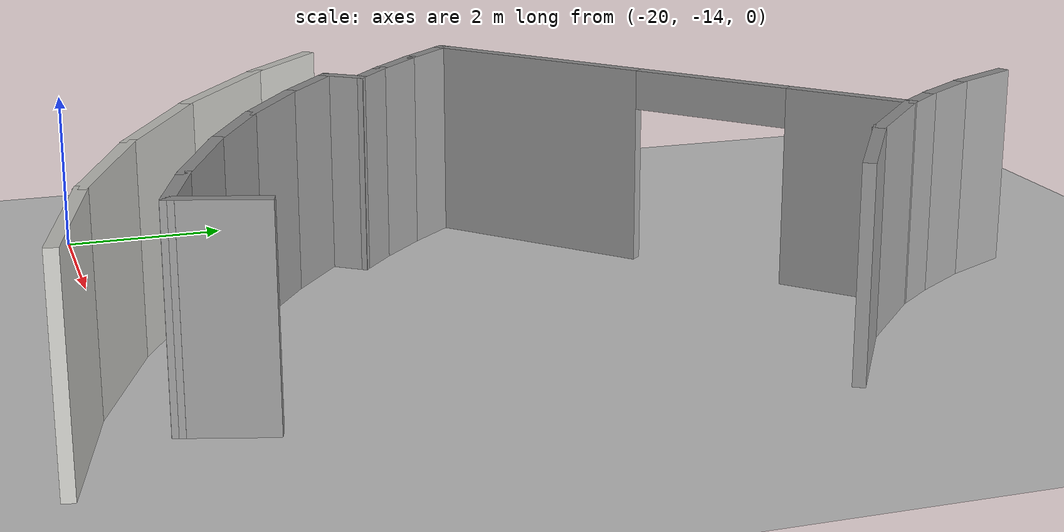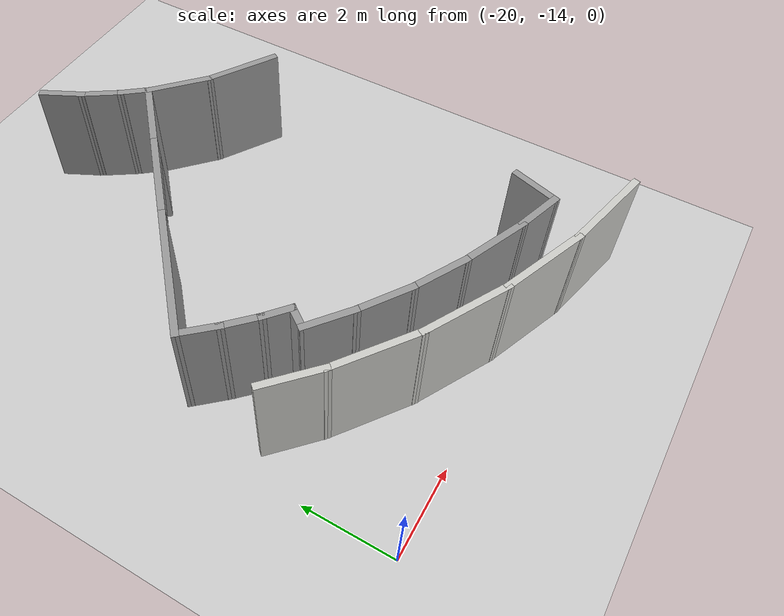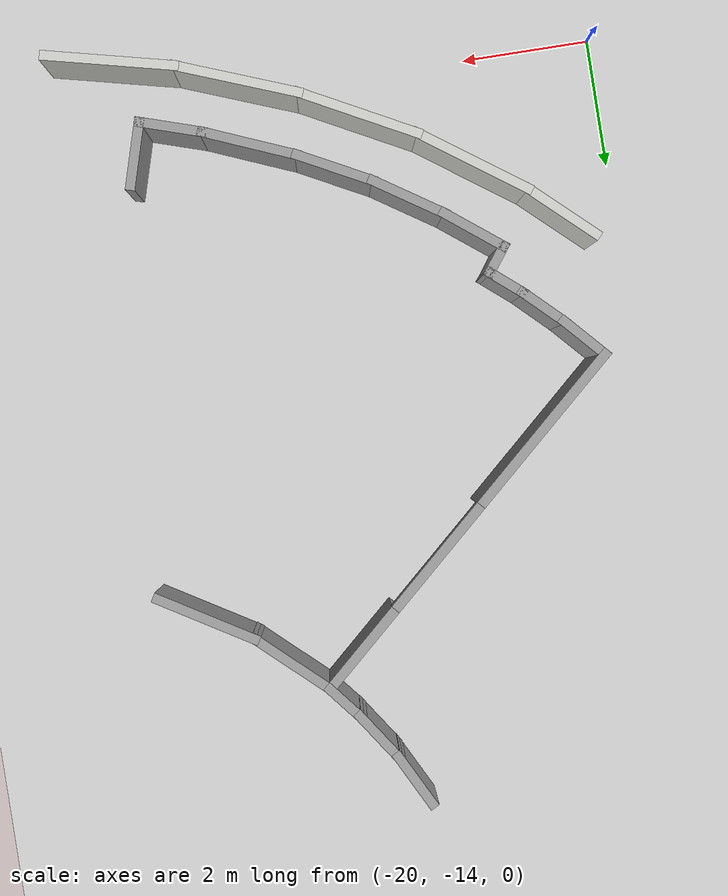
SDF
<sdf version="1.7">
 <world name="default">
  <model name="ground_plane">
   <static>1</static>
   <link name="link">
    <collision name="collision">
     <geometry><plane><normal>0 0 1</normal><size>100 100</size></plane></geometry>
     <surface>
      <contact><collide_bitmask>65535</collide_bitmask></contact>
      <friction><ode><mu>100</mu><mu2>50</mu2></ode></friction>
     </surface>
    </collision>
    <visual name="visual">
     <cast_shadows>0</cast_shadows>
     <geometry><plane><normal>0 0 1</normal><size>100 100</size></plane></geometry>
     <material>
      <script><uri>file://media/materials/scripts/gazebo.material</uri><name>Gazebo/Grey</name></script>
     </material>
    </visual>
   </link>
  </model>
  <model name="model">
   <pose>-4.1341 -0.05921 0 0 -0 0</pose>
   <link name="Wall_145">
    <collision name="Wall_145_Collision">
     <geometry><box><size>1.02535 0.15 2.5</size></box></geometry>
     <pose>0 0 1.25 0 -0 0</pose>
    </collision>
    <visual name="Wall_145_Visual">
     <pose>0 0 1.25 0 -0 0</pose>
     <geometry><box><size>1.02535 0.15 2.5</size></box></geometry>
     <material>
      <script><uri>file://media/materials/scripts/gazebo.material</uri><name>Gazebo/Grey</name></script>
      <ambient>0.929412 0.960784 0.933333 1</ambient>
     </material>
     <meta><layer>0</layer></meta>
    </visual>
    <pose>-11.2782 -3.01729 0 0 -0 -1.10039</pose>
   </link>
   <link name="Wall_146">
    <collision name="Wall_146_Collision">
     <geometry><box><size>0.997329 0.15 2.5</size></box></geometry>
     <pose>0 0 1.25 0 -0 0</pose>
    </collision>
    <visual name="Wall_146_Visual">
     <pose>0 0 1.25 0 -0 0</pose>
     <geometry><box><size>0.997329 0.15 2.5</size></box></geometry>
     <material>
      <script><uri>file://media/materials/scripts/gazebo.material</uri><name>Gazebo/Grey</name></script>
      <ambient>0.929412 0.960784 0.933333 1</ambient>
     </material>
     <meta><layer>0</layer></meta>
    </visual>
    <pose>-10.8418 -3.75789 0 0 -0 -0.974136</pose>
   </link>
   <link name="Wall_147">
    <collision name="Wall_147_Collision">
     <geometry><box><size>0.761361 0.15 2.5</size></box></geometry>
     <pose>0 0 1.25 0 -0 0</pose>
    </collision>
    <visual name="Wall_147_Visual">
     <pose>0 0 1.25 0 -0 0</pose>
     <geometry><box><size>0.761361 0.15 2.5</size></box></geometry>
     <material>
      <script><uri>file://media/materials/scripts/gazebo.material</uri><name>Gazebo/Grey</name></script>
      <ambient>0.929412 0.960784 0.933333 1</ambient>
     </material>
     <meta><layer>0</layer></meta>
    </visual>
    <pose>-10.4119 -4.3464 0 0 -0 -0.892677</pose>
   </link>
   <link name="Wall_149">
    <pose>-12.6849 -6.76582 0 0 -0 -2.4171</pose>
    <visual name="Wall_149_Visual_0">
     <pose>-2.54709 0 1.25 0 -0 0</pose>
     <geometry><box><size>1.63856 0.15 2.5</size></box></geometry>
     <material>
      <script><uri>file://media/materials/scripts/gazebo.material</uri><name>Gazebo/Grey</name></script>
      <ambient>0.929412 0.960784 0.933333 1</ambient>
     </material>
     <meta><layer>0</layer></meta>
    </visual>
    <collision name="Wall_149_Collision_0">
     <geometry><box><size>1.63856 0.15 2.5</size></box></geometry>
     <pose>-2.54709 0 1.25 0 -0 0</pose>
    </collision>
    <visual name="Wall_149_Visual_1">
     <pose>1.84361 0 1.25 0 -0 0</pose>
     <geometry><box><size>3.04552 0.15 2.5</size></box></geometry>
     <material>
      <script><uri>file://media/materials/scripts/gazebo.material</uri><name>Gazebo/Grey</name></script>
      <ambient>0.929412 0.960784 0.933333 1</ambient>
     </material>
     <meta><layer>0</layer></meta>
    </visual>
    <collision name="Wall_149_Collision_1">
     <geometry><box><size>3.04552 0.15 2.5</size></box></geometry>
     <pose>1.84361 0 1.25 0 -0 0</pose>
    </collision>
    <visual name="Wall_149_Visual_2">
     <pose>-0.703479 0 2.25 0 -0 0</pose>
     <geometry><box><size>2.04867 0.15 0.5</size></box></geometry>
     <material>
      <script><uri>file://media/materials/scripts/gazebo.material</uri><name>Gazebo/Grey</name></script>
      <ambient>0.929412 0.960784 0.933333 1</ambient>
     </material>
     <meta><layer>0</layer></meta>
    </visual>
    <collision name="Wall_149_Collision_2">
     <geometry><box><size>2.04867 0.15 0.5</size></box></geometry>
     <pose>-0.703479 0 2.25 0 -0 0</pose>
    </collision>
   </link>
   <link name="Wall_153">
    <collision name="Wall_153_Collision">
     <geometry><box><size>0.953287 0.15 2.5</size></box></geometry>
     <pose>0 0 1.25 0 -0 0</pose>
    </collision>
    <visual name="Wall_153_Visual">
     <pose>0 0 1.25 0 -0 0</pose>
     <geometry><box><size>0.953287 0.15 2.5</size></box></geometry>
     <material>
      <script><uri>file://media/materials/scripts/gazebo.material</uri><name>Gazebo/Grey</name></script>
      <ambient>1 1 1 1</ambient>
     </material>
     <meta><layer>0</layer></meta>
    </visual>
    <pose>-14.8797 -9.24465 0 0 -0 -0.833951</pose>
   </link>
   <link name="Wall_154">
    <collision name="Wall_154_Collision">
     <geometry><box><size>0.912545 0.15 2.5</size></box></geometry>
     <pose>0 0 1.25 0 -0 0</pose>
    </collision>
    <visual name="Wall_154_Visual">
     <pose>0 0 1.25 0 -0 0</pose>
     <geometry><box><size>0.912545 0.15 2.5</size></box></geometry>
     <material>
      <script><uri>file://media/materials/scripts/gazebo.material</uri><name>Gazebo/Grey</name></script>
      <ambient>1 1 1 1</ambient>
     </material>
     <meta><layer>0</layer></meta>
    </visual>
    <pose>-14.3359 -9.80732 0 0 -0 -0.769271</pose>
   </link>
   <link name="Wall_155">
    <collision name="Wall_155_Collision">
     <geometry><box><size>0.730072 0.15 2.5</size></box></geometry>
     <pose>0 0 1.25 0 -0 0</pose>
    </collision>
    <visual name="Wall_155_Visual">
     <pose>0 0 1.25 0 -0 0</pose>
     <geometry><box><size>0.730072 0.15 2.5</size></box></geometry>
     <material>
      <script><uri>file://media/materials/scripts/gazebo.material</uri><name>Gazebo/Grey</name></script>
      <ambient>1 1 1 1</ambient>
     </material>
     <meta><layer>0</layer></meta>
    </visual>
    <pose>-13.8402 -10.2595 0 0 -0 -0.700496</pose>
   </link>
   <link name="Wall_156">
    <collision name="Wall_156_Collision">
     <geometry><box><size>0.603926 0.15 2.5</size></box></geometry>
     <pose>0 0 1.25 0 -0 0</pose>
    </collision>
    <visual name="Wall_156_Visual">
     <pose>0 0 1.25 0 -0 0</pose>
     <geometry><box><size>0.603926 0.15 2.5</size></box></geometry>
     <material>
      <script><uri>file://media/materials/scripts/gazebo.material</uri><name>Gazebo/Grey</name></script>
      <ambient>1 1 1 1</ambient>
     </material>
     <meta><layer>0</layer></meta>
    </visual>
    <pose>-13.7533 -10.6291 0 0 -0 -2.20663</pose>
   </link>
   <link name="Wall_158">
    <collision name="Wall_158_Collision">
     <geometry><box><size>1.18744 0.15 2.5</size></box></geometry>
     <pose>0 0 1.25 0 -0 0</pose>
    </collision>
    <visual name="Wall_158_Visual">
     <pose>0 0 1.25 0 -0 0</pose>
     <geometry><box><size>1.18744 0.15 2.5</size></box></geometry>
     <material>
      <script><uri>file://media/materials/scripts/gazebo.material</uri><name>Gazebo/Grey</name></script>
      <ambient>1 1 1 1</ambient>
     </material>
     <meta><layer>0</layer></meta>
    </visual>
    <pose>-13.4803 -11.1323 0 0 -0 -0.666394</pose>
   </link>
   <link name="Wall_159">
    <collision name="Wall_159_Collision">
     <geometry><box><size>1.33983 0.15 2.5</size></box></geometry>
     <pose>0 0 1.25 0 -0 0</pose>
    </collision>
    <visual name="Wall_159_Visual">
     <pose>0 0 1.25 0 -0 0</pose>
     <geometry><box><size>1.33983 0.15 2.5</size></box></geometry>
     <material>
      <script><uri>file://media/materials/scripts/gazebo.material</uri><name>Gazebo/Grey</name></script>
      <ambient>1 1 1 1</ambient>
     </material>
     <meta><layer>0</layer></meta>
    </visual>
    <pose>-12.5776 -11.783 0 0 -0 -0.588003</pose>
   </link>
   <link name="Wall_160">
    <collision name="Wall_160_Collision">
     <geometry><box><size>1.37119 0.15 2.5</size></box></geometry>
     <pose>0 0 1.25 0 -0 0</pose>
    </collision>
    <visual name="Wall_160_Visual">
     <pose>0 0 1.25 0 -0 0</pose>
     <geometry><box><size>1.37119 0.15 2.5</size></box></geometry>
     <material>
      <script><uri>file://media/materials/scripts/gazebo.material</uri><name>Gazebo/Grey</name></script>
      <ambient>1 1 1 1</ambient>
     </material>
     <meta><layer>0</layer></meta>
    </visual>
    <pose>-11.5426 -12.398 0 0 -0 -0.485622</pose>
   </link>
   <link name="Wall_161">
    <collision name="Wall_161_Collision">
     <geometry><box><size>1.62462 0.15 2.5</size></box></geometry>
     <pose>0 0 1.25 0 -0 0</pose>
    </collision>
    <visual name="Wall_161_Visual">
     <pose>0 0 1.25 0 -0 0</pose>
     <geometry><box><size>1.62462 0.15 2.5</size></box></geometry>
     <material>
      <script><uri>file://media/materials/scripts/gazebo.material</uri><name>Gazebo/Grey</name></script>
      <ambient>1 1 1 1</ambient>
     </material>
     <meta><layer>0</layer></meta>
    </visual>
    <pose>-10.3226 -12.968 0 0 -0 -0.396878</pose>
   </link>
   <link name="Wall_162">
    <collision name="Wall_162_Collision">
     <geometry><box><size>1.11768 0.15 2.5</size></box></geometry>
     <pose>0 0 1.25 0 -0 0</pose>
    </collision>
    <visual name="Wall_162_Visual">
     <pose>0 0 1.25 0 -0 0</pose>
     <geometry><box><size>1.11768 0.15 2.5</size></box></geometry>
     <material>
      <script><uri>file://media/materials/scripts/gazebo.material</uri><name>Gazebo/Grey</name></script>
      <ambient>1 1 1 1</ambient>
     </material>
     <meta><layer>0</layer></meta>
    </visual>
    <pose>-9.18259 -13.403 0 0 -0 -0.315215</pose>
   </link>
   <link name="Wall_163">
    <collision name="Wall_163_Collision">
     <geometry><box><size>1.12124 0.15 2.5</size></box></geometry>
     <pose>0 0 1.25 0 -0 0</pose>
    </collision>
    <visual name="Wall_163_Visual">
     <pose>0 0 1.25 0 -0 0</pose>
     <geometry><box><size>1.12124 0.15 2.5</size></box></geometry>
     <material>
      <script><uri>file://media/materials/scripts/gazebo.material</uri><name>Gazebo/Grey</name></script>
      <ambient>1 1 1 1</ambient>
     </material>
     <meta><layer>0</layer></meta>
    </visual>
    <pose>-8.58259 -13.088 0 0 -0 1.27835</pose>
   </link>
   <link name="Wall_170">
    <collision name="Wall_170_Collision">
     <geometry><box><size>1.74678 0.15 2.5</size></box></geometry>
     <pose>0 0 1.25 0 -0 0</pose>
    </collision>
    <visual name="Wall_170_Visual">
     <pose>0 0 1.25 0 -0 0</pose>
     <geometry><box><size>1.74678 0.15 2.5</size></box></geometry>
     <material>
      <script><uri>file://media/materials/scripts/gazebo.material</uri><name>Gazebo/Grey</name></script>
      <ambient>1 1 1 1</ambient>
     </material>
     <meta><layer>0</layer></meta>
    </visual>
    <pose>-8.52869 -5.93789 0 0 -0 2.59265</pose>
   </link>
   <link name="Wall_171">
    <collision name="Wall_171_Collision">
     <geometry><box><size>1.49778 0.15 2.5</size></box></geometry>
     <pose>0 0 1.25 0 -0 0</pose>
    </collision>
    <visual name="Wall_171_Visual">
     <pose>0 0 1.25 0 -0 0</pose>
     <geometry><box><size>1.49778 0.15 2.5</size></box></geometry>
     <material>
      <script><uri>file://media/materials/scripts/gazebo.material</uri><name>Gazebo/Grey</name></script>
      <ambient>1 1 1 1</ambient>
     </material>
     <meta><layer>0</layer></meta>
    </visual>
    <pose>-9.70572 -5.06504 0 0 -0 2.39784</pose>
   </link>
   <link name="Wall_71">
    <collision name="Wall_71_Collision">
     <geometry><box><size>2.1227 0.15 2.5</size></box></geometry>
     <pose>0 0 1.25 0 -0 0</pose>
    </collision>
    <visual name="Wall_71_Visual">
     <pose>0 0 1.25 0 -0 0</pose>
     <geometry><box><size>2.1227 0.15 2.5</size></box></geometry>
     <material>
      <script><uri>file://media/materials/scripts/gazebo.material</uri><name>Gazebo/CeilingTiled</name></script>
      <ambient>0.964706 1 0.972549 1</ambient>
     </material>
     <meta><layer>0</layer></meta>
    </visual>
    <pose>-8.42113 -14.5484 0 0 -0 2.90474</pose>
   </link>
   <link name="Wall_72">
    <collision name="Wall_72_Collision">
     <geometry><box><size>2.08035 0.15 2.5</size></box></geometry>
     <pose>0 0 1.25 0 -0 0</pose>
    </collision>
    <visual name="Wall_72_Visual">
     <pose>0 0 1.25 0 -0 0</pose>
     <geometry><box><size>2.08035 0.15 2.5</size></box></geometry>
     <material>
      <script><uri>file://media/materials/scripts/gazebo.material</uri><name>Gazebo/CeilingTiled</name></script>
      <ambient>0.964706 1 0.972549 1</ambient>
     </material>
     <meta><layer>0</layer></meta>
    </visual>
    <pose>-10.2792 -13.9665 0 0 -0 2.76999</pose>
   </link>
   <link name="Wall_73">
    <collision name="Wall_73_Collision">
     <geometry><box><size>2.06685 0.15 2.5</size></box></geometry>
     <pose>0 0 1.25 0 -0 0</pose>
    </collision>
    <visual name="Wall_73_Visual">
     <pose>0 0 1.25 0 -0 0</pose>
     <geometry><box><size>2.06685 0.15 2.5</size></box></geometry>
     <material>
      <script><uri>file://media/materials/scripts/gazebo.material</uri><name>Gazebo/CeilingTiled</name></script>
      <ambient>0.964706 1 0.972549 1</ambient>
     </material>
     <meta><layer>0</layer></meta>
    </visual>
    <pose>-12.0249 -13.1664 0 0 -0 2.65326</pose>
   </link>
   <link name="Wall_75">
    <collision name="Wall_75_Collision">
     <geometry><box><size>2.02562 0.15 2.5</size></box></geometry>
     <pose>0 0 1.25 0 -0 0</pose>
    </collision>
    <visual name="Wall_75_Visual">
     <pose>0 0 1.25 0 -0 0</pose>
     <geometry><box><size>2.02562 0.15 2.5</size></box></geometry>
     <material>
      <script><uri>file://media/materials/scripts/gazebo.material</uri><name>Gazebo/CeilingTiled</name></script>
      <ambient>0.964706 1 0.972549 1</ambient>
     </material>
     <meta><layer>0</layer></meta>
    </visual>
    <pose>-13.6318 -12.1679 0 0 -0 2.51642</pose>
   </link>
   <link name="Wall_76">
    <collision name="Wall_76_Collision">
     <geometry><box><size>1.39463 0.15 2.5</size></box></geometry>
     <pose>0 0 1.25 0 -0 0</pose>
    </collision>
    <visual name="Wall_76_Visual">
     <pose>0 0 1.25 0 -0 0</pose>
     <geometry><box><size>1.39463 0.15 2.5</size></box></geometry>
     <material>
      <script><uri>file://media/materials/scripts/gazebo.material</uri><name>Gazebo/CeilingTiled</name></script>
      <ambient>0.964706 1 0.972549 1</ambient>
     </material>
     <meta><layer>0</layer></meta>
    </visual>
    <pose>-14.8485 -11.1959 0 0 -0 2.39377</pose>
   </link>
   <static>1</static>
  </model>
 </world>
</sdf>
